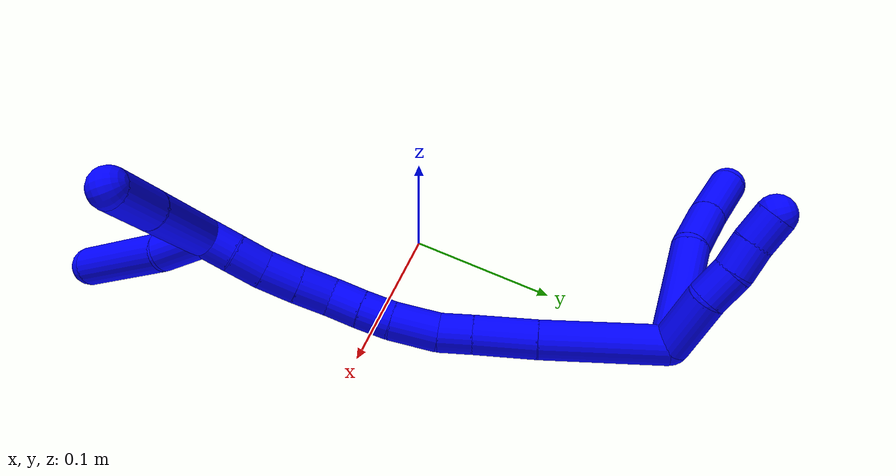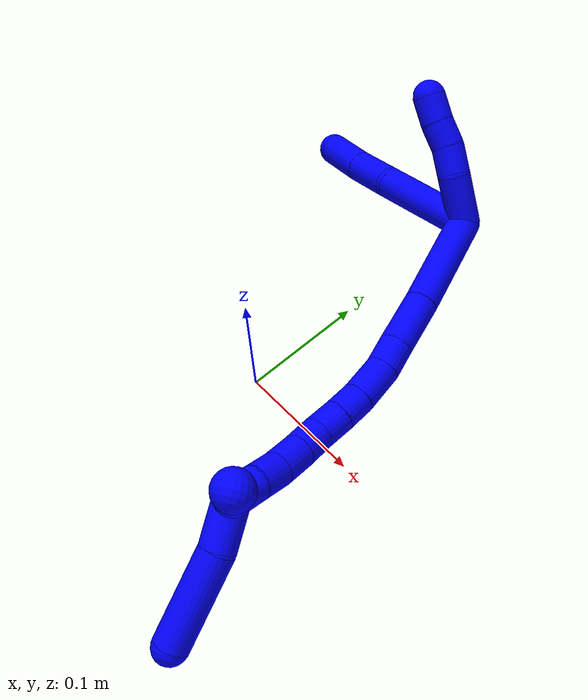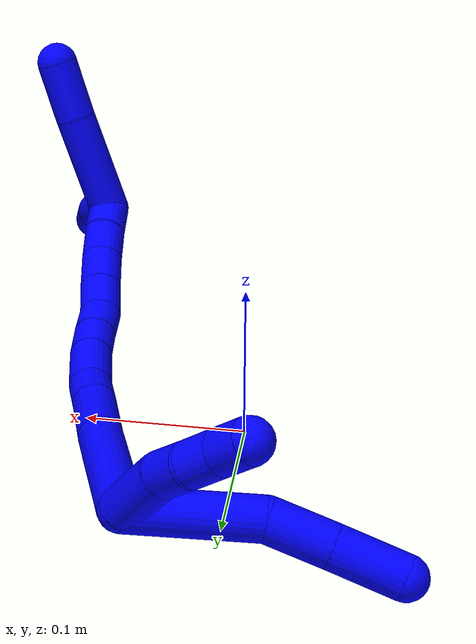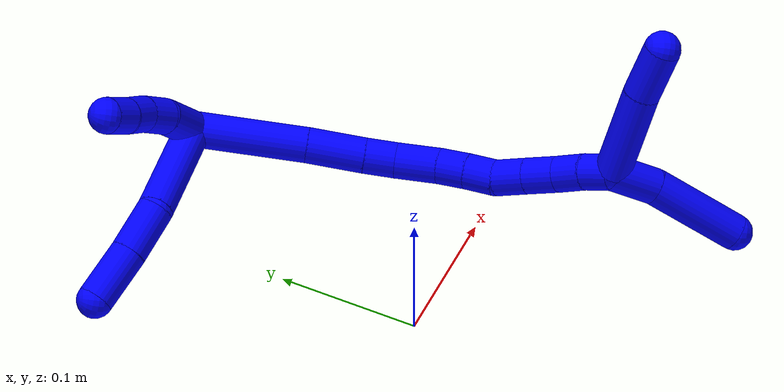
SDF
<sdf version="1.7">
 <world name="default">
  <model name="1">
   <static>0</static>
   <link name="1">
    <collision name="collision-cylinder-e_1_2_8">
     <pose>0.033785 0.003104 -0.014801 -2.93489 1.14992 -2.82415</pose>
     <geometry><cylinder><radius>0.0125</radius><length>0.07403</length></cylinder></geometry>
     <surface>
      <friction><ode><mu>1.16</mu><mu2>1.16</mu2><slip1>0</slip1><slip2>0</slip2></ode></friction>
      <contact><ode><kp>1e+06</kp><kd>1</kd><max_vel>0</max_vel><min_depth>0.001</min_depth></ode></contact>
     </surface>
    </collision>
    <visual name="visual-cylinder-e_1_2_8">
     <pose>0.033785 0.003104 -0.014801 -2.93489 1.14992 -2.82415</pose>
     <geometry><cylinder><radius>0.0125</radius><length>0.07403</length></cylinder></geometry>
     <material><ambient>0 0 1 1</ambient></material>
    </visual>
    <collision name="collision-cylinder-e_2_8_9">
     <pose>0.082108 0.013082 -0.037911 -2.45038 0.932558 -1.89962</pose>
     <geometry><cylinder><radius>0.0125</radius><length>0.036203</length></cylinder></geometry>
     <surface>
      <friction><ode><mu>1.16</mu><mu2>1.16</mu2><slip1>0</slip1><slip2>0</slip2></ode></friction>
      <contact><ode><kp>1e+06</kp><kd>1</kd><max_vel>0</max_vel><min_depth>0.001</min_depth></ode></contact>
     </surface>
    </collision>
    <visual name="visual-cylinder-e_2_8_9">
     <pose>0.082108 0.013082 -0.037911 -2.45038 0.932558 -1.89962</pose>
     <geometry><cylinder><radius>0.0125</radius><length>0.036203</length></cylinder></geometry>
     <material><ambient>0 0 1 1</ambient></material>
    </visual>
    <collision name="collision-cylinder-e_3_9_6">
     <pose>0.112041 0.027447 -0.056332 -2.5041 0.885546 -1.92559</pose>
     <geometry><cylinder><radius>0.0125</radius><length>0.039767</length></cylinder></geometry>
     <surface>
      <friction><ode><mu>1.16</mu><mu2>1.16</mu2><slip1>0</slip1><slip2>0</slip2></ode></friction>
      <contact><ode><kp>1e+06</kp><kd>1</kd><max_vel>0</max_vel><min_depth>0.001</min_depth></ode></contact>
     </surface>
    </collision>
    <visual name="visual-cylinder-e_3_9_6">
     <pose>0.112041 0.027447 -0.056332 -2.5041 0.885546 -1.92559</pose>
     <geometry><cylinder><radius>0.0125</radius><length>0.039767</length></cylinder></geometry>
     <material><ambient>0 0 1 1</ambient></material>
    </visual>
    <collision name="collision-cylinder-e_1_2_10">
     <pose>0.005414 -0.011645 -0.014295 2.45801 0.285606 0.768173</pose>
     <geometry><cylinder><radius>0.0125</radius><length>0.038433</length></cylinder></geometry>
     <surface>
      <friction><ode><mu>1.16</mu><mu2>1.16</mu2><slip1>0</slip1><slip2>0</slip2></ode></friction>
      <contact><ode><kp>1e+06</kp><kd>1</kd><max_vel>0</max_vel><min_depth>0.001</min_depth></ode></contact>
     </surface>
    </collision>
    <visual name="visual-cylinder-e_1_2_10">
     <pose>0.005414 -0.011645 -0.014295 2.45801 0.285606 0.768173</pose>
     <geometry><cylinder><radius>0.0125</radius><length>0.038433</length></cylinder></geometry>
     <material><ambient>0 0 1 1</ambient></material>
    </visual>
    <collision name="collision-cylinder-e_2_10_11">
     <pose>0.014428 -0.027484 -0.037782 2.7135 0.342324 1.3436</pose>
     <geometry><cylinder><radius>0.0125</radius><length>0.02145</length></cylinder></geometry>
     <surface>
      <friction><ode><mu>1.16</mu><mu2>1.16</mu2><slip1>0</slip1><slip2>0</slip2></ode></friction>
      <contact><ode><kp>1e+06</kp><kd>1</kd><max_vel>0</max_vel><min_depth>0.001</min_depth></ode></contact>
     </surface>
    </collision>
    <visual name="visual-cylinder-e_2_10_11">
     <pose>0.014428 -0.027484 -0.037782 2.7135 0.342324 1.3436</pose>
     <geometry><cylinder><radius>0.0125</radius><length>0.02145</length></cylinder></geometry>
     <material><ambient>0 0 1 1</ambient></material>
    </visual>
    <collision name="collision-cylinder-e_3_11_12">
     <pose>0.023116 -0.035866 -0.054502 2.63402 0.53344 1.6228</pose>
     <geometry><cylinder><radius>0.0125</radius><length>0.020012</length></cylinder></geometry>
     <surface>
      <friction><ode><mu>1.16</mu><mu2>1.16</mu2><slip1>0</slip1><slip2>0</slip2></ode></friction>
      <contact><ode><kp>1e+06</kp><kd>1</kd><max_vel>0</max_vel><min_depth>0.001</min_depth></ode></contact>
     </surface>
    </collision>
    <visual name="visual-cylinder-e_3_11_12">
     <pose>0.023116 -0.035866 -0.054502 2.63402 0.53344 1.6228</pose>
     <geometry><cylinder><radius>0.0125</radius><length>0.020012</length></cylinder></geometry>
     <material><ambient>0 0 1 1</ambient></material>
    </visual>
    <collision name="collision-cylinder-e_4_12_5">
     <pose>0.032384 -0.044156 -0.070202 2.67625 0.42878 1.48628</pose>
     <geometry><cylinder><radius>0.0125</radius><length>0.020105</length></cylinder></geometry>
     <surface>
      <friction><ode><mu>1.16</mu><mu2>1.16</mu2><slip1>0</slip1><slip2>0</slip2></ode></friction>
      <contact><ode><kp>1e+06</kp><kd>1</kd><max_vel>0</max_vel><min_depth>0.001</min_depth></ode></contact>
     </surface>
    </collision>
    <visual name="visual-cylinder-e_4_12_5">
     <pose>0.032384 -0.044156 -0.070202 2.67625 0.42878 1.48628</pose>
     <geometry><cylinder><radius>0.0125</radius><length>0.020105</length></cylinder></geometry>
     <material><ambient>0 0 1 1</ambient></material>
    </visual>
    <collision name="collision-cylinder-e_1_2_13">
     <pose>0.008177 -0.010241 0.037172 0.268831 0.208972 0.028361</pose>
     <geometry><cylinder><radius>0.0125</radius><length>0.078829</length></cylinder></geometry>
     <surface>
      <friction><ode><mu>1.16</mu><mu2>1.16</mu2><slip1>0</slip1><slip2>0</slip2></ode></friction>
      <contact><ode><kp>1e+06</kp><kd>1</kd><max_vel>0</max_vel><min_depth>0.001</min_depth></ode></contact>
     </surface>
    </collision>
    <visual name="visual-cylinder-e_1_2_13">
     <pose>0.008177 -0.010241 0.037172 0.268831 0.208972 0.028361</pose>
     <geometry><cylinder><radius>0.0125</radius><length>0.078829</length></cylinder></geometry>
     <material><ambient>0 0 1 1</ambient></material>
    </visual>
    <collision name="collision-cylinder-e_2_13_14">
     <pose>0.02138 -0.02552 0.093096 0.262449 0.253319 0.033611</pose>
     <geometry><cylinder><radius>0.0125</radius><length>0.040113</length></cylinder></geometry>
     <surface>
      <friction><ode><mu>1.16</mu><mu2>1.16</mu2><slip1>0</slip1><slip2>0</slip2></ode></friction>
      <contact><ode><kp>1e+06</kp><kd>1</kd><max_vel>0</max_vel><min_depth>0.001</min_depth></ode></contact>
     </surface>
    </collision>
    <visual name="visual-cylinder-e_2_13_14">
     <pose>0.02138 -0.02552 0.093096 0.262449 0.253319 0.033611</pose>
     <geometry><cylinder><radius>0.0125</radius><length>0.040113</length></cylinder></geometry>
     <material><ambient>0 0 1 1</ambient></material>
    </visual>
    <collision name="collision-cylinder-e_3_14_15">
     <pose>0.028891 -0.033508 0.122177 0.278254 0.227298 0.031964</pose>
     <geometry><cylinder><radius>0.0125</radius><length>0.022051</length></cylinder></geometry>
     <surface>
      <friction><ode><mu>1.16</mu><mu2>1.16</mu2><slip1>0</slip1><slip2>0</slip2></ode></friction>
      <contact><ode><kp>1e+06</kp><kd>1</kd><max_vel>0</max_vel><min_depth>0.001</min_depth></ode></contact>
     </surface>
    </collision>
    <visual name="visual-cylinder-e_3_14_15">
     <pose>0.028891 -0.033508 0.122177 0.278254 0.227298 0.031964</pose>
     <geometry><cylinder><radius>0.0125</radius><length>0.022051</length></cylinder></geometry>
     <material><ambient>0 0 1 1</ambient></material>
    </visual>
    <collision name="collision-cylinder-e_4_15_16">
     <pose>0.03632 -0.043026 0.145481 0.468573 0.327703 0.078879</pose>
     <geometry><cylinder><radius>0.0125</radius><length>0.030721</length></cylinder></geometry>
     <surface>
      <friction><ode><mu>1.16</mu><mu2>1.16</mu2><slip1>0</slip1><slip2>0</slip2></ode></friction>
      <contact><ode><kp>1e+06</kp><kd>1</kd><max_vel>0</max_vel><min_depth>0.001</min_depth></ode></contact>
     </surface>
    </collision>
    <visual name="visual-cylinder-e_4_15_16">
     <pose>0.03632 -0.043026 0.145481 0.468573 0.327703 0.078879</pose>
     <geometry><cylinder><radius>0.0125</radius><length>0.030721</length></cylinder></geometry>
     <material><ambient>0 0 1 1</ambient></material>
    </visual>
    <collision name="collision-cylinder-e_5_16_17">
     <pose>0.045484 -0.054195 0.166486 0.520336 0.427888 0.115546</pose>
     <geometry><cylinder><radius>0.0125</radius><length>0.020341</length></cylinder></geometry>
     <surface>
      <friction><ode><mu>1.16</mu><mu2>1.16</mu2><slip1>0</slip1><slip2>0</slip2></ode></friction>
      <contact><ode><kp>1e+06</kp><kd>1</kd><max_vel>0</max_vel><min_depth>0.001</min_depth></ode></contact>
     </surface>
    </collision>
    <visual name="visual-cylinder-e_5_16_17">
     <pose>0.045484 -0.054195 0.166486 0.520336 0.427888 0.115546</pose>
     <geometry><cylinder><radius>0.0125</radius><length>0.020341</length></cylinder></geometry>
     <material><ambient>0 0 1 1</ambient></material>
    </visual>
    <collision name="collision-cylinder-e_6_17_18">
     <pose>0.054453 -0.063417 0.182534 0.522851 0.474021 0.129073</pose>
     <geometry><cylinder><radius>0.0125</radius><length>0.020804</length></cylinder></geometry>
     <surface>
      <friction><ode><mu>1.16</mu><mu2>1.16</mu2><slip1>0</slip1><slip2>0</slip2></ode></friction>
      <contact><ode><kp>1e+06</kp><kd>1</kd><max_vel>0</max_vel><min_depth>0.001</min_depth></ode></contact>
     </surface>
    </collision>
    <visual name="visual-cylinder-e_6_17_18">
     <pose>0.054453 -0.063417 0.182534 0.522851 0.474021 0.129073</pose>
     <geometry><cylinder><radius>0.0125</radius><length>0.020804</length></cylinder></geometry>
     <material><ambient>0 0 1 1</ambient></material>
    </visual>
    <collision name="collision-cylinder-e_7_18_19">
     <pose>0.06234 -0.07551 0.198571 0.750095 0.278948 0.110422</pose>
     <geometry><cylinder><radius>0.0125</radius><length>0.022803</length></cylinder></geometry>
     <surface>
      <friction><ode><mu>1.16</mu><mu2>1.16</mu2><slip1>0</slip1><slip2>0</slip2></ode></friction>
      <contact><ode><kp>1e+06</kp><kd>1</kd><max_vel>0</max_vel><min_depth>0.001</min_depth></ode></contact>
     </surface>
    </collision>
    <visual name="visual-cylinder-e_7_18_19">
     <pose>0.06234 -0.07551 0.198571 0.750095 0.278948 0.110422</pose>
     <geometry><cylinder><radius>0.0125</radius><length>0.022803</length></cylinder></geometry>
     <material><ambient>0 0 1 1</ambient></material>
    </visual>
    <collision name="collision-cylinder-e_8_19_20">
     <pose>0.068953 -0.090746 0.214374 0.784096 0.306052 0.127362</pose>
     <geometry><cylinder><radius>0.0125</radius><length>0.023058</length></cylinder></geometry>
     <surface>
      <friction><ode><mu>1.16</mu><mu2>1.16</mu2><slip1>0</slip1><slip2>0</slip2></ode></friction>
      <contact><ode><kp>1e+06</kp><kd>1</kd><max_vel>0</max_vel><min_depth>0.001</min_depth></ode></contact>
     </surface>
    </collision>
    <visual name="visual-cylinder-e_8_19_20">
     <pose>0.068953 -0.090746 0.214374 0.784096 0.306052 0.127362</pose>
     <geometry><cylinder><radius>0.0125</radius><length>0.023058</length></cylinder></geometry>
     <material><ambient>0 0 1 1</ambient></material>
    </visual>
    <collision name="collision-cylinder-e_9_20_21">
     <pose>0.075873 -0.106253 0.228345 0.89666 0.334567 0.162088</pose>
     <geometry><cylinder><radius>0.0125</radius><length>0.02099</length></cylinder></geometry>
     <surface>
      <friction><ode><mu>1.16</mu><mu2>1.16</mu2><slip1>0</slip1><slip2>0</slip2></ode></friction>
      <contact><ode><kp>1e+06</kp><kd>1</kd><max_vel>0</max_vel><min_depth>0.001</min_depth></ode></contact>
     </surface>
    </collision>
    <visual name="visual-cylinder-e_9_20_21">
     <pose>0.075873 -0.106253 0.228345 0.89666 0.334567 0.162088</pose>
     <geometry><cylinder><radius>0.0125</radius><length>0.02099</length></cylinder></geometry>
     <material><ambient>0 0 1 1</ambient></material>
    </visual>
    <collision name="collision-cylinder-e_10_21_1">
     <pose>0.083282 -0.120814 0.240917 0.818123 0.401373 0.175921</pose>
     <geometry><cylinder><radius>0.0125</radius><length>0.020289</length></cylinder></geometry>
     <surface>
      <friction><ode><mu>1.16</mu><mu2>1.16</mu2><slip1>0</slip1><slip2>0</slip2></ode></friction>
      <contact><ode><kp>1e+06</kp><kd>1</kd><max_vel>0</max_vel><min_depth>0.001</min_depth></ode></contact>
     </surface>
    </collision>
    <visual name="visual-cylinder-e_10_21_1">
     <pose>0.083282 -0.120814 0.240917 0.818123 0.401373 0.175921</pose>
     <geometry><cylinder><radius>0.0125</radius><length>0.020289</length></cylinder></geometry>
     <material><ambient>0 0 1 1</ambient></material>
    </visual>
    <collision name="collision-cylinder-e_1_1_22">
     <pose>0.076332 -0.157318 0.246619 1.59374 -0.352175 -0.360176</pose>
     <geometry><cylinder><radius>0.0125</radius><length>0.063277</length></cylinder></geometry>
     <surface>
      <friction><ode><mu>1.16</mu><mu2>1.16</mu2><slip1>0</slip1><slip2>0</slip2></ode></friction>
      <contact><ode><kp>1e+06</kp><kd>1</kd><max_vel>0</max_vel><min_depth>0.001</min_depth></ode></contact>
     </surface>
    </collision>
    <visual name="visual-cylinder-e_1_1_22">
     <pose>0.076332 -0.157318 0.246619 1.59374 -0.352175 -0.360176</pose>
     <geometry><cylinder><radius>0.0125</radius><length>0.063277</length></cylinder></geometry>
     <material><ambient>0 0 1 1</ambient></material>
    </visual>
    <collision name="collision-cylinder-e_2_22_4">
     <pose>0.059982 -0.204533 0.246602 1.5329 -0.300598 -0.289577</pose>
     <geometry><cylinder><radius>0.0125</radius><length>0.036723</length></cylinder></geometry>
     <surface>
      <friction><ode><mu>1.16</mu><mu2>1.16</mu2><slip1>0</slip1><slip2>0</slip2></ode></friction>
      <contact><ode><kp>1e+06</kp><kd>1</kd><max_vel>0</max_vel><min_depth>0.001</min_depth></ode></contact>
     </surface>
    </collision>
    <visual name="visual-cylinder-e_2_22_4">
     <pose>0.059982 -0.204533 0.246602 1.5329 -0.300598 -0.289577</pose>
     <geometry><cylinder><radius>0.0125</radius><length>0.036723</length></cylinder></geometry>
     <material><ambient>0 0 1 1</ambient></material>
    </visual>
    <collision name="collision-cylinder-e_1_1_23">
     <pose>0.088851 -0.125325 0.263553 -0.140853 0.097467 -0.006881</pose>
     <geometry><cylinder><radius>0.0125</radius><length>0.032988</length></cylinder></geometry>
     <surface>
      <friction><ode><mu>1.16</mu><mu2>1.16</mu2><slip1>0</slip1><slip2>0</slip2></ode></friction>
      <contact><ode><kp>1e+06</kp><kd>1</kd><max_vel>0</max_vel><min_depth>0.001</min_depth></ode></contact>
     </surface>
    </collision>
    <visual name="visual-cylinder-e_1_1_23">
     <pose>0.088851 -0.125325 0.263553 -0.140853 0.097467 -0.006881</pose>
     <geometry><cylinder><radius>0.0125</radius><length>0.032988</length></cylinder></geometry>
     <material><ambient>0 0 1 1</ambient></material>
    </visual>
    <collision name="collision-cylinder-e_2_23_3">
     <pose>0.100278 -0.116638 0.311198 -0.200583 0.297505 -0.030158</pose>
     <geometry><cylinder><radius>0.0125</radius><length>0.067012</length></cylinder></geometry>
     <surface>
      <friction><ode><mu>1.16</mu><mu2>1.16</mu2><slip1>0</slip1><slip2>0</slip2></ode></friction>
      <contact><ode><kp>1e+06</kp><kd>1</kd><max_vel>0</max_vel><min_depth>0.001</min_depth></ode></contact>
     </surface>
    </collision>
    <visual name="visual-cylinder-e_2_23_3">
     <pose>0.100278 -0.116638 0.311198 -0.200583 0.297505 -0.030158</pose>
     <geometry><cylinder><radius>0.0125</radius><length>0.067012</length></cylinder></geometry>
     <material><ambient>0 0 1 1</ambient></material>
    </visual>
    <collision name="collision-sphere-3">
     <pose>0.110099 -0.110255 0.34259 0 -0 0</pose>
     <geometry><sphere><radius>0.0125</radius></sphere></geometry>
     <surface>
      <friction><ode><mu>1.16</mu><mu2>1.16</mu2><slip1>0</slip1><slip2>0</slip2></ode></friction>
      <contact><ode><kp>1e+06</kp><kd>1</kd><max_vel>0</max_vel><min_depth>0.001</min_depth></ode></contact>
     </surface>
    </collision>
    <visual name="visual-sphere-3">
     <pose>0.110099 -0.110255 0.34259 0 -0 0</pose>
     <geometry><sphere><radius>0.0125</radius></sphere></geometry>
     <material><ambient>0 0 1 1</ambient></material>
    </visual>
    <collision name="collision-sphere-23">
     <pose>0.090456 -0.12302 0.279807 0 -0 0</pose>
     <geometry><sphere><radius>0.0125</radius></sphere></geometry>
     <surface>
      <friction><ode><mu>1.16</mu><mu2>1.16</mu2><slip1>0</slip1><slip2>0</slip2></ode></friction>
      <contact><ode><kp>1e+06</kp><kd>1</kd><max_vel>0</max_vel><min_depth>0.001</min_depth></ode></contact>
     </surface>
    </collision>
    <visual name="visual-sphere-23">
     <pose>0.090456 -0.12302 0.279807 0 -0 0</pose>
     <geometry><sphere><radius>0.0125</radius></sphere></geometry>
     <material><ambient>0 0 1 1</ambient></material>
    </visual>
    <collision name="collision-sphere-4">
     <pose>0.054545 -0.222058 0.247266 0 -0 0</pose>
     <geometry><sphere><radius>0.0125</radius></sphere></geometry>
     <surface>
      <friction><ode><mu>1.16</mu><mu2>1.16</mu2><slip1>0</slip1><slip2>0</slip2></ode></friction>
      <contact><ode><kp>1e+06</kp><kd>1</kd><max_vel>0</max_vel><min_depth>0.001</min_depth></ode></contact>
     </surface>
    </collision>
    <visual name="visual-sphere-4">
     <pose>0.054545 -0.222058 0.247266 0 -0 0</pose>
     <geometry><sphere><radius>0.0125</radius></sphere></geometry>
     <material><ambient>0 0 1 1</ambient></material>
    </visual>
    <collision name="collision-sphere-22">
     <pose>0.065419 -0.187007 0.245938 0 -0 0</pose>
     <geometry><sphere><radius>0.0125</radius></sphere></geometry>
     <surface>
      <friction><ode><mu>1.16</mu><mu2>1.16</mu2><slip1>0</slip1><slip2>0</slip2></ode></friction>
      <contact><ode><kp>1e+06</kp><kd>1</kd><max_vel>0</max_vel><min_depth>0.001</min_depth></ode></contact>
     </surface>
    </collision>
    <visual name="visual-sphere-22">
     <pose>0.065419 -0.187007 0.245938 0 -0 0</pose>
     <geometry><sphere><radius>0.0125</radius></sphere></geometry>
     <material><ambient>0 0 1 1</ambient></material>
    </visual>
    <collision name="collision-sphere-1">
     <pose>0.087246 -0.127629 0.2473 0 -0 0</pose>
     <geometry><sphere><radius>0.0125</radius></sphere></geometry>
     <surface>
      <friction><ode><mu>1.16</mu><mu2>1.16</mu2><slip1>0</slip1><slip2>0</slip2></ode></friction>
      <contact><ode><kp>1e+06</kp><kd>1</kd><max_vel>0</max_vel><min_depth>0.001</min_depth></ode></contact>
     </surface>
    </collision>
    <visual name="visual-sphere-1">
     <pose>0.087246 -0.127629 0.2473 0 -0 0</pose>
     <geometry><sphere><radius>0.0125</radius></sphere></geometry>
     <material><ambient>0 0 1 1</ambient></material>
    </visual>
    <collision name="collision-sphere-21">
     <pose>0.079319 -0.113998 0.234533 0 -0 0</pose>
     <geometry><sphere><radius>0.0125</radius></sphere></geometry>
     <surface>
      <friction><ode><mu>1.16</mu><mu2>1.16</mu2><slip1>0</slip1><slip2>0</slip2></ode></friction>
      <contact><ode><kp>1e+06</kp><kd>1</kd><max_vel>0</max_vel><min_depth>0.001</min_depth></ode></contact>
     </surface>
    </collision>
    <visual name="visual-sphere-21">
     <pose>0.079319 -0.113998 0.234533 0 -0 0</pose>
     <geometry><sphere><radius>0.0125</radius></sphere></geometry>
     <material><ambient>0 0 1 1</ambient></material>
    </visual>
    <collision name="collision-sphere-11">
     <pose>0.018028 -0.031678 -0.046972 0 -0 0</pose>
     <geometry><sphere><radius>0.0125</radius></sphere></geometry>
     <surface>
      <friction><ode><mu>1.16</mu><mu2>1.16</mu2><slip1>0</slip1><slip2>0</slip2></ode></friction>
      <contact><ode><kp>1e+06</kp><kd>1</kd><max_vel>0</max_vel><min_depth>0.001</min_depth></ode></contact>
     </surface>
    </collision>
    <visual name="visual-sphere-11">
     <pose>0.018028 -0.031678 -0.046972 0 -0 0</pose>
     <geometry><sphere><radius>0.0125</radius></sphere></geometry>
     <material><ambient>0 0 1 1</ambient></material>
    </visual>
    <collision name="collision-sphere-10">
     <pose>0.010828 -0.02329 -0.028591 0 -0 0</pose>
     <geometry><sphere><radius>0.0125</radius></sphere></geometry>
     <surface>
      <friction><ode><mu>1.16</mu><mu2>1.16</mu2><slip1>0</slip1><slip2>0</slip2></ode></friction>
      <contact><ode><kp>1e+06</kp><kd>1</kd><max_vel>0</max_vel><min_depth>0.001</min_depth></ode></contact>
     </surface>
    </collision>
    <visual name="visual-sphere-10">
     <pose>0.010828 -0.02329 -0.028591 0 -0 0</pose>
     <geometry><sphere><radius>0.0125</radius></sphere></geometry>
     <material><ambient>0 0 1 1</ambient></material>
    </visual>
    <collision name="collision-sphere-6">
     <pose>0.127436 0.034936 -0.066444 0 -0 0</pose>
     <geometry><sphere><radius>0.0125</radius></sphere></geometry>
     <surface>
      <friction><ode><mu>1.16</mu><mu2>1.16</mu2><slip1>0</slip1><slip2>0</slip2></ode></friction>
      <contact><ode><kp>1e+06</kp><kd>1</kd><max_vel>0</max_vel><min_depth>0.001</min_depth></ode></contact>
     </surface>
    </collision>
    <visual name="visual-sphere-6">
     <pose>0.127436 0.034936 -0.066444 0 -0 0</pose>
     <geometry><sphere><radius>0.0125</radius></sphere></geometry>
     <material><ambient>0 0 1 1</ambient></material>
    </visual>
    <collision name="collision-sphere-9">
     <pose>0.096646 0.019957 -0.04622 0 -0 0</pose>
     <geometry><sphere><radius>0.0125</radius></sphere></geometry>
     <surface>
      <friction><ode><mu>1.16</mu><mu2>1.16</mu2><slip1>0</slip1><slip2>0</slip2></ode></friction>
      <contact><ode><kp>1e+06</kp><kd>1</kd><max_vel>0</max_vel><min_depth>0.001</min_depth></ode></contact>
     </surface>
    </collision>
    <visual name="visual-sphere-9">
     <pose>0.096646 0.019957 -0.04622 0 -0 0</pose>
     <geometry><sphere><radius>0.0125</radius></sphere></geometry>
     <material><ambient>0 0 1 1</ambient></material>
    </visual>
    <collision name="collision-sphere-2">
     <geometry><sphere><radius>0.0125</radius></sphere></geometry>
     <surface>
      <friction><ode><mu>1.16</mu><mu2>1.16</mu2><slip1>0</slip1><slip2>0</slip2></ode></friction>
      <contact><ode><kp>1e+06</kp><kd>1</kd><max_vel>0</max_vel><min_depth>0.001</min_depth></ode></contact>
     </surface>
    </collision>
    <visual name="visual-sphere-2">
     <geometry><sphere><radius>0.0125</radius></sphere></geometry>
     <material><ambient>0 0 1 1</ambient></material>
    </visual>
    <collision name="collision-sphere-19">
     <pose>0.065479 -0.082982 0.20659 0 -0 0</pose>
     <geometry><sphere><radius>0.0125</radius></sphere></geometry>
     <surface>
      <friction><ode><mu>1.16</mu><mu2>1.16</mu2><slip1>0</slip1><slip2>0</slip2></ode></friction>
      <contact><ode><kp>1e+06</kp><kd>1</kd><max_vel>0</max_vel><min_depth>0.001</min_depth></ode></contact>
     </surface>
    </collision>
    <visual name="visual-sphere-19">
     <pose>0.065479 -0.082982 0.20659 0 -0 0</pose>
     <geometry><sphere><radius>0.0125</radius></sphere></geometry>
     <material><ambient>0 0 1 1</ambient></material>
    </visual>
    <collision name="collision-sphere-8">
     <pose>0.06757 0.006207 -0.029602 0 -0 0</pose>
     <geometry><sphere><radius>0.0125</radius></sphere></geometry>
     <surface>
      <friction><ode><mu>1.16</mu><mu2>1.16</mu2><slip1>0</slip1><slip2>0</slip2></ode></friction>
      <contact><ode><kp>1e+06</kp><kd>1</kd><max_vel>0</max_vel><min_depth>0.001</min_depth></ode></contact>
     </surface>
    </collision>
    <visual name="visual-sphere-8">
     <pose>0.06757 0.006207 -0.029602 0 -0 0</pose>
     <geometry><sphere><radius>0.0125</radius></sphere></geometry>
     <material><ambient>0 0 1 1</ambient></material>
    </visual>
    <collision name="collision-sphere-12">
     <pose>0.028204 -0.040053 -0.062031 0 -0 0</pose>
     <geometry><sphere><radius>0.0125</radius></sphere></geometry>
     <surface>
      <friction><ode><mu>1.16</mu><mu2>1.16</mu2><slip1>0</slip1><slip2>0</slip2></ode></friction>
      <contact><ode><kp>1e+06</kp><kd>1</kd><max_vel>0</max_vel><min_depth>0.001</min_depth></ode></contact>
     </surface>
    </collision>
    <visual name="visual-sphere-12">
     <pose>0.028204 -0.040053 -0.062031 0 -0 0</pose>
     <geometry><sphere><radius>0.0125</radius></sphere></geometry>
     <material><ambient>0 0 1 1</ambient></material>
    </visual>
    <collision name="collision-sphere-5">
     <pose>0.036563 -0.048259 -0.078372 0 -0 0</pose>
     <geometry><sphere><radius>0.0125</radius></sphere></geometry>
     <surface>
      <friction><ode><mu>1.16</mu><mu2>1.16</mu2><slip1>0</slip1><slip2>0</slip2></ode></friction>
      <contact><ode><kp>1e+06</kp><kd>1</kd><max_vel>0</max_vel><min_depth>0.001</min_depth></ode></contact>
     </surface>
    </collision>
    <visual name="visual-sphere-5">
     <pose>0.036563 -0.048259 -0.078372 0 -0 0</pose>
     <geometry><sphere><radius>0.0125</radius></sphere></geometry>
     <material><ambient>0 0 1 1</ambient></material>
    </visual>
    <collision name="collision-sphere-13">
     <pose>0.016353 -0.020482 0.074345 0 -0 0</pose>
     <geometry><sphere><radius>0.0125</radius></sphere></geometry>
     <surface>
      <friction><ode><mu>1.16</mu><mu2>1.16</mu2><slip1>0</slip1><slip2>0</slip2></ode></friction>
      <contact><ode><kp>1e+06</kp><kd>1</kd><max_vel>0</max_vel><min_depth>0.001</min_depth></ode></contact>
     </surface>
    </collision>
    <visual name="visual-sphere-13">
     <pose>0.016353 -0.020482 0.074345 0 -0 0</pose>
     <geometry><sphere><radius>0.0125</radius></sphere></geometry>
     <material><ambient>0 0 1 1</ambient></material>
    </visual>
    <collision name="collision-sphere-14">
     <pose>0.026407 -0.030557 0.111848 0 -0 0</pose>
     <geometry><sphere><radius>0.0125</radius></sphere></geometry>
     <surface>
      <friction><ode><mu>1.16</mu><mu2>1.16</mu2><slip1>0</slip1><slip2>0</slip2></ode></friction>
      <contact><ode><kp>1e+06</kp><kd>1</kd><max_vel>0</max_vel><min_depth>0.001</min_depth></ode></contact>
     </surface>
    </collision>
    <visual name="visual-sphere-14">
     <pose>0.026407 -0.030557 0.111848 0 -0 0</pose>
     <geometry><sphere><radius>0.0125</radius></sphere></geometry>
     <material><ambient>0 0 1 1</ambient></material>
    </visual>
    <collision name="collision-sphere-15">
     <pose>0.031376 -0.036458 0.132506 0 -0 0</pose>
     <geometry><sphere><radius>0.0125</radius></sphere></geometry>
     <surface>
      <friction><ode><mu>1.16</mu><mu2>1.16</mu2><slip1>0</slip1><slip2>0</slip2></ode></friction>
      <contact><ode><kp>1e+06</kp><kd>1</kd><max_vel>0</max_vel><min_depth>0.001</min_depth></ode></contact>
     </surface>
    </collision>
    <visual name="visual-sphere-15">
     <pose>0.031376 -0.036458 0.132506 0 -0 0</pose>
     <geometry><sphere><radius>0.0125</radius></sphere></geometry>
     <material><ambient>0 0 1 1</ambient></material>
    </visual>
    <collision name="collision-sphere-16">
     <pose>0.041264 -0.049594 0.158457 0 -0 0</pose>
     <geometry><sphere><radius>0.0125</radius></sphere></geometry>
     <surface>
      <friction><ode><mu>1.16</mu><mu2>1.16</mu2><slip1>0</slip1><slip2>0</slip2></ode></friction>
      <contact><ode><kp>1e+06</kp><kd>1</kd><max_vel>0</max_vel><min_depth>0.001</min_depth></ode></contact>
     </surface>
    </collision>
    <visual name="visual-sphere-16">
     <pose>0.041264 -0.049594 0.158457 0 -0 0</pose>
     <geometry><sphere><radius>0.0125</radius></sphere></geometry>
     <material><ambient>0 0 1 1</ambient></material>
    </visual>
    <collision name="collision-sphere-17">
     <pose>0.049705 -0.058795 0.174515 0 -0 0</pose>
     <geometry><sphere><radius>0.0125</radius></sphere></geometry>
     <surface>
      <friction><ode><mu>1.16</mu><mu2>1.16</mu2><slip1>0</slip1><slip2>0</slip2></ode></friction>
      <contact><ode><kp>1e+06</kp><kd>1</kd><max_vel>0</max_vel><min_depth>0.001</min_depth></ode></contact>
     </surface>
    </collision>
    <visual name="visual-sphere-17">
     <pose>0.049705 -0.058795 0.174515 0 -0 0</pose>
     <geometry><sphere><radius>0.0125</radius></sphere></geometry>
     <material><ambient>0 0 1 1</ambient></material>
    </visual>
    <collision name="collision-sphere-18">
     <pose>0.059201 -0.068038 0.190552 0 -0 0</pose>
     <geometry><sphere><radius>0.0125</radius></sphere></geometry>
     <surface>
      <friction><ode><mu>1.16</mu><mu2>1.16</mu2><slip1>0</slip1><slip2>0</slip2></ode></friction>
      <contact><ode><kp>1e+06</kp><kd>1</kd><max_vel>0</max_vel><min_depth>0.001</min_depth></ode></contact>
     </surface>
    </collision>
    <visual name="visual-sphere-18">
     <pose>0.059201 -0.068038 0.190552 0 -0 0</pose>
     <geometry><sphere><radius>0.0125</radius></sphere></geometry>
     <material><ambient>0 0 1 1</ambient></material>
    </visual>
    <collision name="collision-sphere-20">
     <pose>0.072427 -0.098509 0.222157 0 -0 0</pose>
     <geometry><sphere><radius>0.0125</radius></sphere></geometry>
     <surface>
      <friction><ode><mu>1.16</mu><mu2>1.16</mu2><slip1>0</slip1><slip2>0</slip2></ode></friction>
      <contact><ode><kp>1e+06</kp><kd>1</kd><max_vel>0</max_vel><min_depth>0.001</min_depth></ode></contact>
     </surface>
    </collision>
    <visual name="visual-sphere-20">
     <pose>0.072427 -0.098509 0.222157 0 -0 0</pose>
     <geometry><sphere><radius>0.0125</radius></sphere></geometry>
     <material><ambient>0 0 1 1</ambient></material>
    </visual>
    <inertial>
     <pose>0.053134 -0.060097 0.114404 0 -0 0</pose>
     <mass>0.75</mass>
     <inertia><ixx>0.000117</ixx><ixy>0</ixy><ixz>0</ixz><iyy>0.000111</iyy><iyz>0</iyz><izz>-5e-06</izz></inertia>
    </inertial>
   </link>
   <pose>0.038833 0.185488 0.075037 -1.9198 0.132259 -2.60077</pose>
  </model>
 </world>
</sdf>
